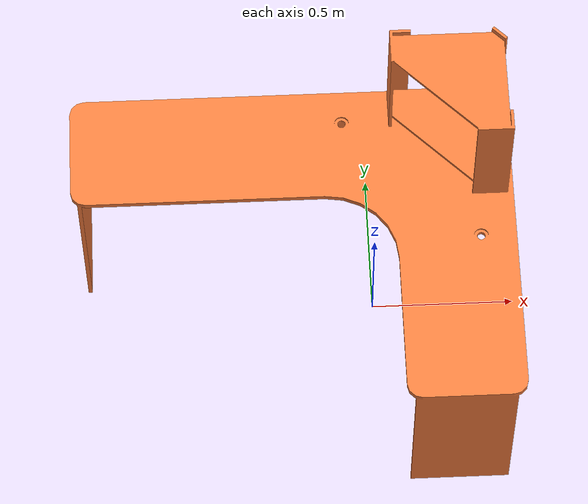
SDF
<?xml version='1.0'?>
<sdf version='1.6'>
  <model name='rai_desktop_table'>
    <link name='link_5'>
      <pose frame=''>0 0 0 0 -0 0</pose>
      <visual name='visual'>
        <pose frame=''>0 0 0.72 1.57 -0 0</pose>
        <geometry>
          <mesh>
           <uri>model://rai_desktop_table/meshes/rai_desktop_table.STL</uri>
            <scale>1 1 1</scale>
          </mesh>
        </geometry>
        <material>
          <lighting>1</lighting>
          <script>
            <uri>file://media/materials/scripts/gazebo.material</uri>
            <name>Gazebo/Grey</name>
          </script>
          <ambient>1 0.5 0.25 1</ambient>
          <diffuse>1 0.5 0.25 1</diffuse>
          <specular>0.01 0.01 0.01 1</specular>
          <emissive>0 0 0 0.5</emissive>
          <shader type='vertex'>
            <normal_map>__default__</normal_map>
          </shader>
        </material>
        <cast_shadows>1</cast_shadows>
        <transparency>0</transparency>
      </visual>
      <collision name='collision'>
        <pose frame=''>0 0 0.72 1.57 -0 0</pose>
        <geometry>
          <mesh>
             <uri>model://rai_desktop_table/meshes/rai_desktop_table.STL</uri>
          </mesh>
        </geometry>
      </collision>
    </link>
    <static>1</static>
    <allow_auto_disable>1</allow_auto_disable>
  </model>
</sdf>
